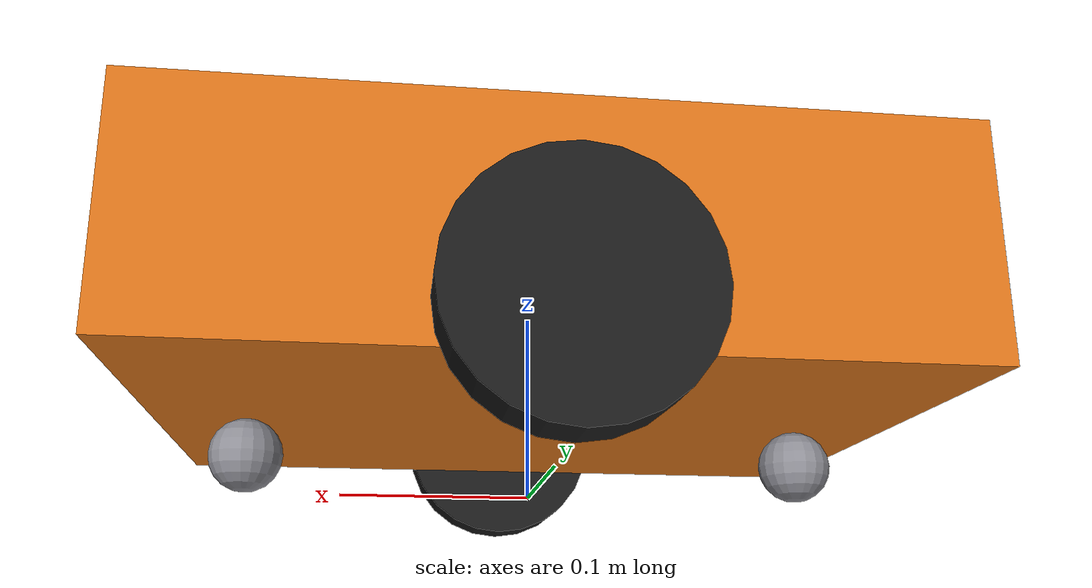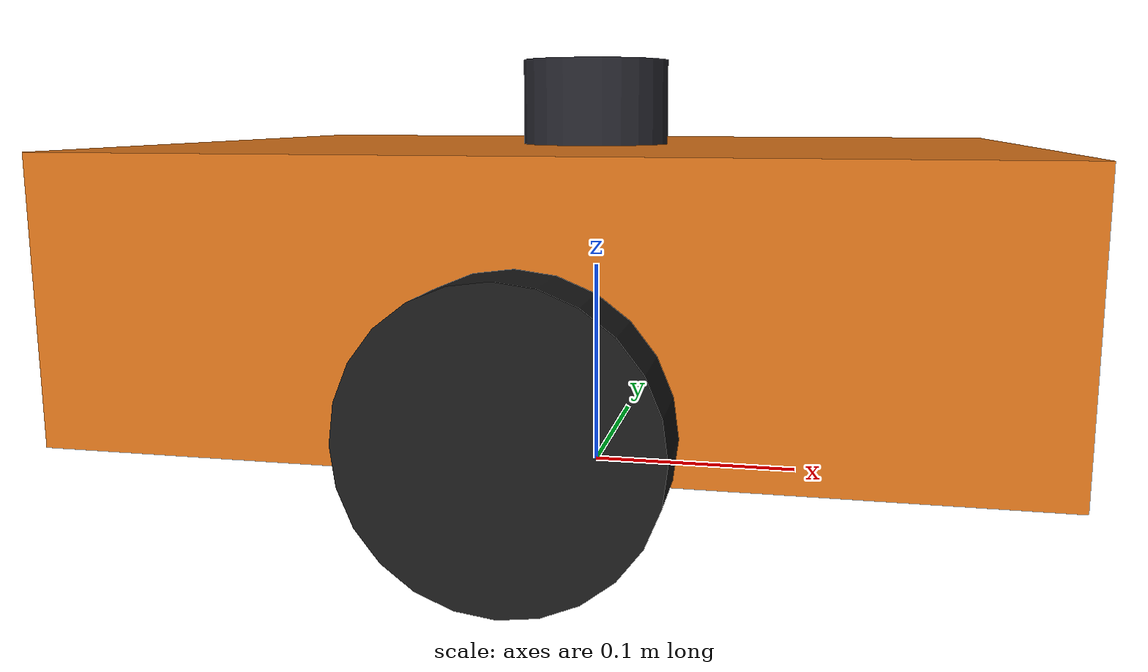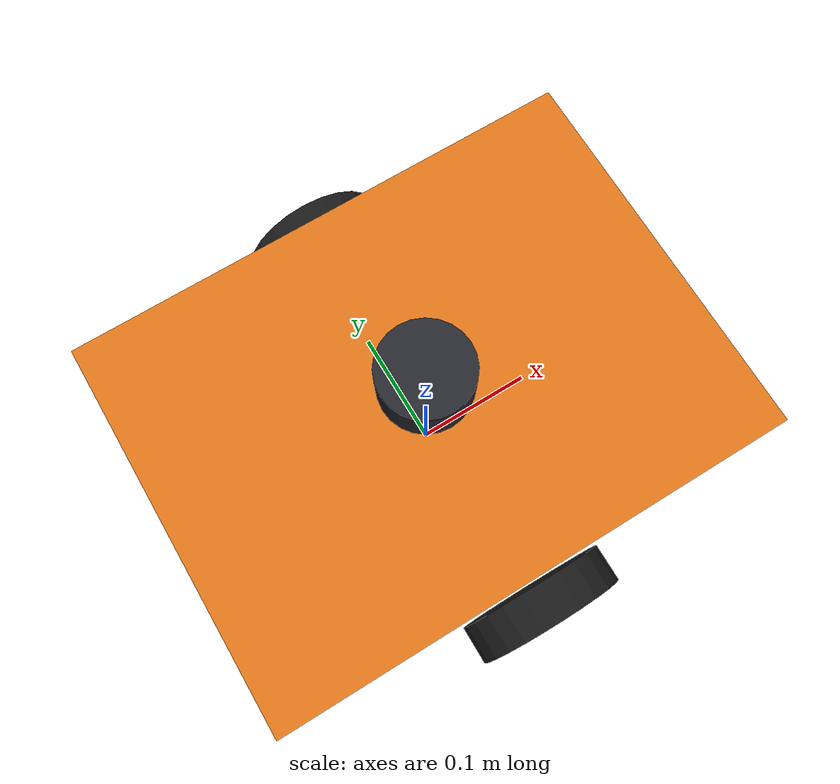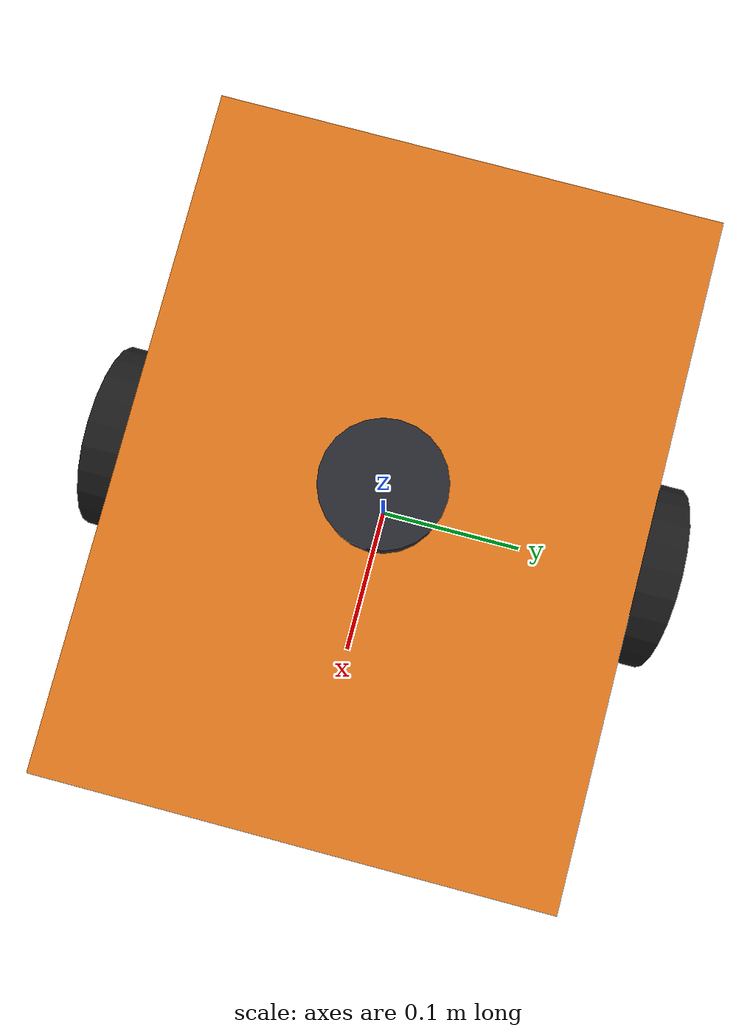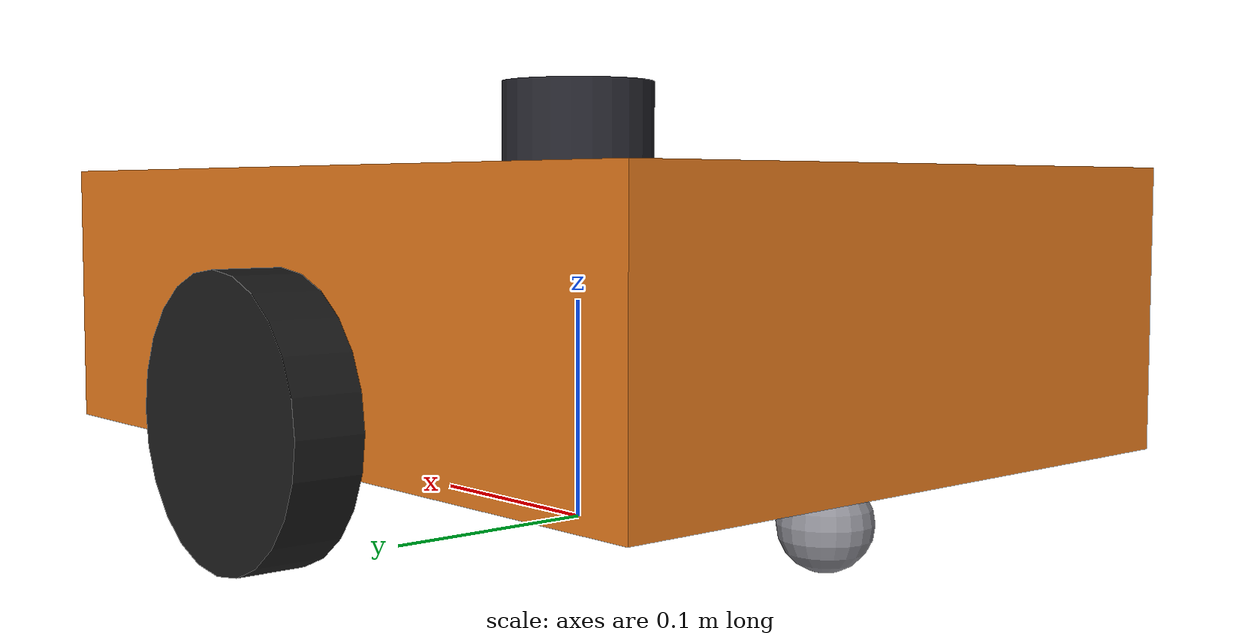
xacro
<?xml version="1.0"?>
<robot name="ane_amr" xmlns:xacro="http://www.ros.org/wiki/xacro">
  <xacro:arg name="sim" default="true"/>
  <xacro:include filename="$(find ane_description)/urdf/inertia.xacro"/>

  <xacro:property name="chassis_length" value="0.40"/>
  <xacro:property name="chassis_width" value="0.30"/>
  <xacro:property name="chassis_height" value="0.12"/>
  <xacro:property name="chassis_bottom" value="0.04"/>
  <xacro:property name="chassis_mass" value="8.0"/>
  <xacro:property name="wheel_radius" value="0.06"/>
  <xacro:property name="wheel_width" value="0.03"/>
  <xacro:property name="wheel_separation" value="0.34"/>
  <xacro:property name="wheel_mass" value="0.4"/>
  <xacro:property name="caster_radius" value="0.0195"/>
  <xacro:property name="caster_offset" value="0.15"/>
  <xacro:property name="caster_mass" value="0.1"/>
  <xacro:property name="lidar_radius" value="0.035"/>
  <xacro:property name="lidar_height" value="0.04"/>
  <xacro:property name="lidar_mass" value="0.15"/>
  <xacro:property name="chassis_z" value="${chassis_bottom + chassis_height / 2 - wheel_radius}"/>

  <material name="body"><color rgba="0.85 0.45 0.10 1"/></material>
  <material name="tyre"><color rgba="0.10 0.10 0.10 1"/></material>
  <material name="sensor"><color rgba="0.15 0.15 0.18 1"/></material>
  <material name="caster"><color rgba="0.55 0.55 0.58 1"/></material>

  <link name="base_footprint"/>

  <link name="base_link">
    <visual>
      <origin xyz="0 0 ${chassis_z}" rpy="0 0 0"/>
      <geometry><box size="${chassis_length} ${chassis_width} ${chassis_height}"/></geometry>
      <material name="body"/>
    </visual>
    <collision>
      <origin xyz="0 0 ${chassis_z}" rpy="0 0 0"/>
      <geometry><box size="${chassis_length} ${chassis_width} ${chassis_height}"/></geometry>
    </collision>
    <xacro:box_inertia m="${chassis_mass}" x="${chassis_length}" y="${chassis_width}" z="${chassis_height}" origin_z="${chassis_z}"/>
  </link>

  <joint name="base_joint" type="fixed">
    <parent link="base_footprint"/>
    <child link="base_link"/>
    <origin xyz="0 0 ${wheel_radius}" rpy="0 0 0"/>
  </joint>

  <xacro:macro name="wheel" params="side y">
    <link name="${side}_wheel_link">
      <visual>
        <origin xyz="0 0 0" rpy="${pi / 2} 0 0"/>
        <geometry><cylinder radius="${wheel_radius}" length="${wheel_width}"/></geometry>
        <material name="tyre"/>
      </visual>
      <collision>
        <origin xyz="0 0 0" rpy="${pi / 2} 0 0"/>
        <geometry><cylinder radius="${wheel_radius}" length="${wheel_width}"/></geometry>
      </collision>
      <xacro:wheel_inertia m="${wheel_mass}" r="${wheel_radius}" w="${wheel_width}"/>
    </link>
    <joint name="${side}_wheel_joint" type="continuous">
      <parent link="base_link"/>
      <child link="${side}_wheel_link"/>
      <origin xyz="0 ${y} 0" rpy="0 0 0"/>
      <axis xyz="0 1 0"/>
    </joint>
  </xacro:macro>
  <xacro:wheel side="left" y="${wheel_separation / 2}"/>
  <xacro:wheel side="right" y="${-wheel_separation / 2}"/>

  <xacro:macro name="caster" params="name x">
    <link name="${name}_caster_link">
      <visual>
        <geometry><sphere radius="${caster_radius}"/></geometry>
        <material name="caster"/>
      </visual>
      <collision>
        <geometry><sphere radius="${caster_radius}"/></geometry>
      </collision>
      <xacro:sphere_inertia m="${caster_mass}" r="${caster_radius}"/>
    </link>
    <joint name="${name}_caster_joint" type="fixed">
      <parent link="base_link"/>
      <child link="${name}_caster_link"/>
      <origin xyz="${x} 0 ${caster_radius + 0.0005 - wheel_radius}" rpy="0 0 0"/>
    </joint>
  </xacro:macro>
  <xacro:caster name="front" x="${caster_offset}"/>
  <xacro:caster name="rear" x="${-caster_offset}"/>

  <link name="lidar_link">
    <visual>
      <geometry><cylinder radius="${lidar_radius}" length="${lidar_height}"/></geometry>
      <material name="sensor"/>
    </visual>
    <collision>
      <geometry><cylinder radius="${lidar_radius}" length="${lidar_height}"/></geometry>
    </collision>
    <xacro:cylinder_inertia m="${lidar_mass}" r="${lidar_radius}" h="${lidar_height}"/>
  </link>
  <joint name="lidar_joint" type="fixed">
    <parent link="base_link"/>
    <child link="lidar_link"/>
    <origin xyz="0 0 ${chassis_bottom + chassis_height + lidar_height / 2 - wheel_radius}" rpy="0 0 0"/>
  </joint>

  <xacro:if value="$(arg sim)">
    <xacro:include filename="$(find ane_description)/urdf/ane_amr.gazebo.xacro"/>
  </xacro:if>
</robot>

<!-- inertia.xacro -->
<!-- Inertia tensors of homogeneous solids about their centre of mass, expressed in the link frame. -->
<robot xmlns:xacro="http://www.ros.org/wiki/xacro">

  <xacro:macro name="box_inertia" params="m x y z origin_z:=0">
    <inertial>
      <origin xyz="0 0 ${origin_z}" rpy="0 0 0"/>
      <mass value="${m}"/>
      <inertia ixx="${m * (y * y + z * z) / 12}" ixy="0" ixz="0"
               iyy="${m * (x * x + z * z) / 12}" iyz="0"
               izz="${m * (x * x + y * y) / 12}"/>
    </inertial>
  </xacro:macro>

  <!-- Wheel: solid cylinder whose axis is the link's y axis (the joint axis). -->
  <xacro:macro name="wheel_inertia" params="m r w">
    <inertial>
      <origin xyz="0 0 0" rpy="0 0 0"/>
      <mass value="${m}"/>
      <inertia ixx="${m * (3 * r * r + w * w) / 12}" ixy="0" ixz="0"
               iyy="${m * r * r / 2}" iyz="0"
               izz="${m * (3 * r * r + w * w) / 12}"/>
    </inertial>
  </xacro:macro>

  <!-- Solid cylinder whose axis is the link's z axis. -->
  <xacro:macro name="cylinder_inertia" params="m r h">
    <inertial>
      <origin xyz="0 0 0" rpy="0 0 0"/>
      <mass value="${m}"/>
      <inertia ixx="${m * (3 * r * r + h * h) / 12}" ixy="0" ixz="0"
               iyy="${m * (3 * r * r + h * h) / 12}" iyz="0"
               izz="${m * r * r / 2}"/>
    </inertial>
  </xacro:macro>

  <xacro:macro name="sphere_inertia" params="m r">
    <inertial>
      <origin xyz="0 0 0" rpy="0 0 0"/>
      <mass value="${m}"/>
      <inertia ixx="${2 * m * r * r / 5}" ixy="0" ixz="0"
               iyy="${2 * m * r * r / 5}" iyz="0"
               izz="${2 * m * r * r / 5}"/>
    </inertial>
  </xacro:macro>

</robot>
